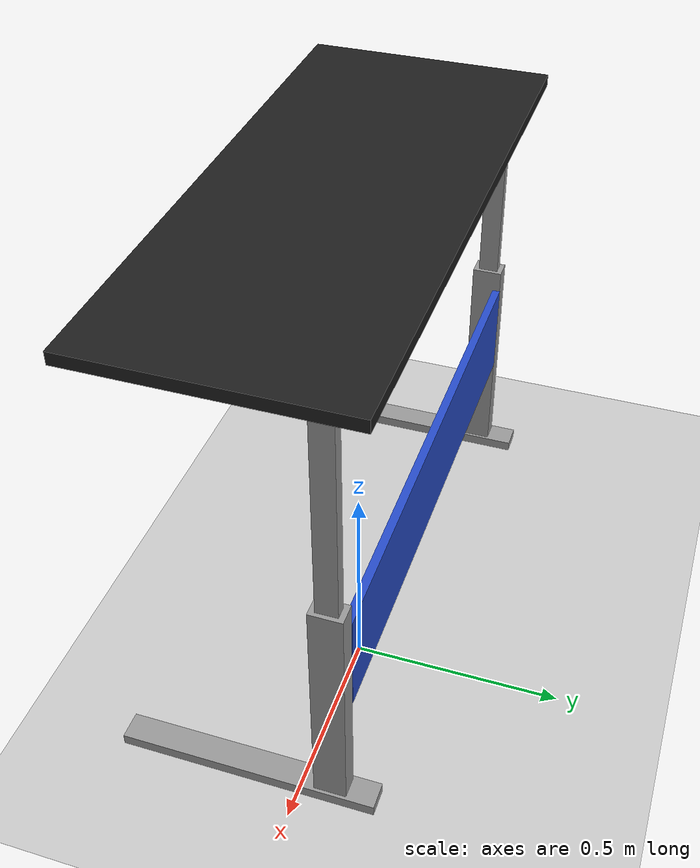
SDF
<sdf version="1.6">
 <world name="default">
  <light name="sun" type="directional">
   <pose>0 0 10 0 -0 0</pose>
   <diffuse>0.8 0.8 0.8 1</diffuse>
   <specular>0.1 0.1 0.1 1</specular>
   <attenuation>
    <range>1000</range>
    <constant>0.9</constant>
    <linear>0.01</linear>
    <quadratic>0.001</quadratic>
   </attenuation>
   <direction>-0.5 0.5 -1</direction>
  </light>
  <model name="ground_plane">
   <static>1</static>
   <link name="link">
    <collision name="collision">
     <geometry><plane><normal>0 0 1</normal><size>100 100</size></plane></geometry>
     <surface><friction><ode><mu>100</mu><mu2>50</mu2></ode></friction></surface>
    </collision>
    <visual name="visual">
     <cast_shadows>0</cast_shadows>
     <geometry><plane><normal>0 0 1</normal><size>100 100</size></plane></geometry>
     <material>
      <script><uri>file://media/materials/scripts/gazebo.material</uri><name>Gazebo/Grey</name></script>
     </material>
    </visual>
   </link>
  </model>
  <gravity>0 0 -9.8</gravity>
  <magnetic_field>6e-06 2.3e-05 -4.2e-05</magnetic_field>
  <atmosphere type="adiabatic"/>
  <physics name="default_physics" default="0" type="ode">
   <max_step_size>0.001</max_step_size>
   <real_time_factor>1</real_time_factor>
   <real_time_update_rate>1000</real_time_update_rate>
  </physics>
  <scene><ambient>0.4 0.4 0.4 1</ambient><background>0.7 0.7 0.7 1</background><shadows>1</shadows></scene>
  <spherical_coordinates>
   <surface_model>EARTH_WGS84</surface_model>
   <latitude_deg>0</latitude_deg>
   <longitude_deg>0</longitude_deg>
   <elevation>0</elevation>
   <heading_deg>0</heading_deg>
  </spherical_coordinates>
  <model name="desk">
   <include><name>desk</name><uri>model://desk</uri><pose>0 0.5 0 0 0 0</pose></include>
  </model>
 </world>
</sdf>

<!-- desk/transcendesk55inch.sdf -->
<sdf version='1.6'>
  <model name='transcendesk'>
    <!--
    To adjust the height of the table, see note below. Also recompute inertia.
    -->
    <link name='table_base'>
      <pose frame=''>-0.243716 -0.625087 0 0 -0 0</pose>
      <inertial>
        <mass>30</mass>
        <pose frame=''>0 0 0 0 -0 0</pose>
        <inertia>
          <ixx>9.825</ixx>
          <ixy>0</ixy>
          <ixz>0</ixz>
          <iyy>8.325</iyy>
          <iyz>0</iyz>
          <izz>11.3</izz>
        </inertia>
      </inertial>
      <self_collide>0</self_collide>
      <kinematic>0</kinematic>
      <gravity>1</gravity>
      <visual name='right_crossbar'>
        <pose frame=''>0.65 0 0.01 0 -0 0</pose>
        <geometry>
          <box>
            <size>0.065 0.61 0.03</size>
          </box>
        </geometry>
        <material>
          <script>
            <uri>file://media/materials/scripts/gazebo.material</uri>
            <name>Gazebo/Grey</name>
          </script>
          <ambient>0.3 0.3 0.3 1</ambient>
          <diffuse>0.7 0.7 0.7 1</diffuse>
          <specular>0.01 0.01 0.01 1</specular>
          <emissive>0 0 0 1</emissive>
          <shader type='vertex'>
            <normal_map>__default__</normal_map>
          </shader>
        </material>
        <cast_shadows>1</cast_shadows>
        <transparency>0</transparency>
      </visual>
      <visual name='left_crossbar'>
        <pose frame=''>-0.65 0 0.01 0 -0 0</pose>
        <geometry>
          <box>
            <size>0.065 0.61 0.03</size>
          </box>
        </geometry>
        <material>
          <script>
            <uri>file://media/materials/scripts/gazebo.material</uri>
            <name>Gazebo/Grey</name>
          </script>
          <ambient>0.3 0.3 0.3 1</ambient>
          <diffuse>0.7 0.7 0.7 1</diffuse>
          <specular>0.01 0.01 0.01 1</specular>
          <emissive>0 0 0 1</emissive>
          <shader type='vertex'>
            <normal_map>__default__</normal_map>
          </shader>
        </material>
        <cast_shadows>1</cast_shadows>
        <transparency>0</transparency>
      </visual>
      <visual name='bottom_right_leg'>
        <pose frame=''>0.65 0.2 0.31 0 -0 0</pose>
        <geometry>
          <box>
            <size>0.05 0.076 0.58</size>
          </box>
        </geometry>
        <material>
          <script>
            <uri>file://media/materials/scripts/gazebo.material</uri>
            <name>Gazebo/Grey</name>
          </script>
          <ambient>0.3 0.3 0.3 1</ambient>
          <diffuse>0.7 0.7 0.7 1</diffuse>
          <specular>0.01 0.01 0.01 1</specular>
          <emissive>0 0 0 1</emissive>
          <shader type='vertex'>
            <normal_map>__default__</normal_map>
          </shader>
        </material>
        <cast_shadows>1</cast_shadows>
        <transparency>0</transparency>
      </visual>
      <visual name='leg_brace'>
        <pose frame=''>0 0.229 0.42 0 -0 0</pose>
        <geometry>
          <box>
            <size>1.25 0.02 0.25</size>
          </box>
        </geometry>
        <material>
          <script>
            <uri>file://media/materials/scripts/gazebo.material</uri>
            <name>Gazebo/Blue</name>
          </script>
          <ambient>0.3 0.3 0.3 1</ambient>
          <diffuse>0.7 0.7 0.7 1</diffuse>
          <specular>0.01 0.01 0.01 1</specular>
          <emissive>0 0 0 1</emissive>
          <shader type='vertex'>
            <normal_map>__default__</normal_map>
          </shader>
        </material>
        <cast_shadows>1</cast_shadows>
        <transparency>0</transparency>
      </visual>
      <visual name='bottom_left_leg'>
        <pose frame=''>-0.65 0.2 0.31 0 -0 0</pose>
        <geometry>
          <box>
            <size>0.05 0.076 0.58</size>
          </box>
        </geometry>
        <material>
          <script>
            <uri>file://media/materials/scripts/gazebo.material</uri>
            <name>Gazebo/Grey</name>
          </script>
          <ambient>0.3 0.3 0.3 1</ambient>
          <diffuse>0.7 0.7 0.7 1</diffuse>
          <specular>0.01 0.01 0.01 1</specular>
          <emissive>0 0 0 1</emissive>
          <shader type='vertex'>
            <normal_map>__default__</normal_map>
          </shader>
        </material>
        <cast_shadows>1</cast_shadows>
        <transparency>0</transparency>
      </visual>
      <collision name='bottom_left_leg'>
        <laser_retro>0</laser_retro>
        <max_contacts>10</max_contacts>
        <pose frame=''>-0.65 0.2 0.31 0 -0 0</pose>
        <geometry>
          <box>
            <size>0.05 0.076 0.58</size>
          </box>
        </geometry>
        <surface>
          <friction>
            <ode>
              <mu>1</mu>
              <mu2>1</mu2>
              <fdir1>0 0 0</fdir1>
              <slip1>0</slip1>
              <slip2>0</slip2>
            </ode>
            <torsional>
              <coefficient>1</coefficient>
              <patch_radius>0</patch_radius>
              <surface_radius>0</surface_radius>
              <use_patch_radius>1</use_patch_radius>
              <ode>
                <slip>0</slip>
              </ode>
            </torsional>
          </friction>
          <bounce>
            <restitution_coefficient>0</restitution_coefficient>
            <threshold>1e+06</threshold>
          </bounce>
          <contact>
            <collide_without_contact>0</collide_without_contact>
            <collide_without_contact_bitmask>1</collide_without_contact_bitmask>
            <collide_bitmask>1</collide_bitmask>
            <ode>
              <soft_cfm>0</soft_cfm>
              <soft_erp>0.2</soft_erp>
              <kp>1e+13</kp>
              <kd>1</kd>
              <max_vel>0.01</max_vel>
              <min_depth>0</min_depth>
            </ode>
            <bullet>
              <split_impulse>1</split_impulse>
              <split_impulse_penetration_threshold>-0.01</split_impulse_penetration_threshold>
              <soft_cfm>0</soft_cfm>
              <soft_erp>0.2</soft_erp>
              <kp>1e+13</kp>
              <kd>1</kd>
            </bullet>
          </contact>
        </surface>
      </collision>
      <collision name='left_crossbar'>
        <laser_retro>0</laser_retro>
        <max_contacts>10</max_contacts>
        <pose frame=''>-0.65 0 0.01 0 -0 0</pose>
        <geometry>
          <box>
            <size>0.065 0.61 0.03</size>
          </box>
        </geometry>
        <surface>
          <friction>
            <ode>
              <mu>1</mu>
              <mu2>1</mu2>
              <fdir1>0 0 0</fdir1>
              <slip1>0</slip1>
              <slip2>0</slip2>
            </ode>
            <torsional>
              <coefficient>1</coefficient>
              <patch_radius>0</patch_radius>
              <surface_radius>0</surface_radius>
              <use_patch_radius>1</use_patch_radius>
              <ode>
                <slip>0</slip>
              </ode>
            </torsional>
          </friction>
          <bounce>
            <restitution_coefficient>0</restitution_coefficient>
            <threshold>1e+06</threshold>
          </bounce>
          <contact>
            <collide_without_contact>0</collide_without_contact>
            <collide_without_contact_bitmask>1</collide_without_contact_bitmask>
            <collide_bitmask>1</collide_bitmask>
            <ode>
              <soft_cfm>0</soft_cfm>
              <soft_erp>0.2</soft_erp>
              <kp>1e+13</kp>
              <kd>1</kd>
              <max_vel>0.01</max_vel>
              <min_depth>0</min_depth>
            </ode>
            <bullet>
              <split_impulse>1</split_impulse>
              <split_impulse_penetration_threshold>-0.01</split_impulse_penetration_threshold>
              <soft_cfm>0</soft_cfm>
              <soft_erp>0.2</soft_erp>
              <kp>1e+13</kp>
              <kd>1</kd>
            </bullet>
          </contact>
        </surface>
      </collision>
      <collision name='right_crossbar'>
        <laser_retro>0</laser_retro>
        <max_contacts>10</max_contacts>
        <pose frame=''>0.65 0 0.01 0 -0 0</pose>
        <geometry>
          <box>
            <size>0.065 0.61 0.03</size>
          </box>
        </geometry>
        <surface>
          <friction>
            <ode>
              <mu>1</mu>
              <mu2>1</mu2>
              <fdir1>0 0 0</fdir1>
              <slip1>0</slip1>
              <slip2>0</slip2>
            </ode>
            <torsional>
              <coefficient>1</coefficient>
              <patch_radius>0</patch_radius>
              <surface_radius>0</surface_radius>
              <use_patch_radius>1</use_patch_radius>
              <ode>
                <slip>0</slip>
              </ode>
            </torsional>
          </friction>
          <bounce>
            <restitution_coefficient>0</restitution_coefficient>
            <threshold>1e+06</threshold>
          </bounce>
          <contact>
            <collide_without_contact>0</collide_without_contact>
            <collide_without_contact_bitmask>1</collide_without_contact_bitmask>
            <collide_bitmask>1</collide_bitmask>
            <ode>
              <soft_cfm>0</soft_cfm>
              <soft_erp>0.2</soft_erp>
              <kp>1e+13</kp>
              <kd>1</kd>
              <max_vel>0.01</max_vel>
              <min_depth>0</min_depth>
            </ode>
            <bullet>
              <split_impulse>1</split_impulse>
              <split_impulse_penetration_threshold>-0.01</split_impulse_penetration_threshold>
              <soft_cfm>0</soft_cfm>
              <soft_erp>0.2</soft_erp>
              <kp>1e+13</kp>
              <kd>1</kd>
            </bullet>
          </contact>
        </surface>
      </collision>
      <collision name='bottom_right_leg'>
        <laser_retro>0</laser_retro>
        <max_contacts>10</max_contacts>
        <pose frame=''>0.65 0.2 0.31 0 -0 0</pose>
        <geometry>
          <box>
            <size>0.05 0.076 0.58</size>
          </box>
        </geometry>
        <surface>
          <friction>
            <ode>
              <mu>1</mu>
              <mu2>1</mu2>
              <fdir1>0 0 0</fdir1>
              <slip1>0</slip1>
              <slip2>0</slip2>
            </ode>
            <torsional>
              <coefficient>1</coefficient>
              <patch_radius>0</patch_radius>
              <surface_radius>0</surface_radius>
              <use_patch_radius>1</use_patch_radius>
              <ode>
                <slip>0</slip>
              </ode>
            </torsional>
          </friction>
          <bounce>
            <restitution_coefficient>0</restitution_coefficient>
            <threshold>1e+06</threshold>
          </bounce>
          <contact>
            <collide_without_contact>0</collide_without_contact>
            <collide_without_contact_bitmask>1</collide_without_contact_bitmask>
            <collide_bitmask>1</collide_bitmask>
            <ode>
              <soft_cfm>0</soft_cfm>
              <soft_erp>0.2</soft_erp>
              <kp>1e+13</kp>
              <kd>1</kd>
              <max_vel>0.01</max_vel>
              <min_depth>0</min_depth>
            </ode>
            <bullet>
              <split_impulse>1</split_impulse>
              <split_impulse_penetration_threshold>-0.01</split_impulse_penetration_threshold>
              <soft_cfm>0</soft_cfm>
              <soft_erp>0.2</soft_erp>
              <kp>1e+13</kp>
              <kd>1</kd>
            </bullet>
          </contact>
        </surface>
      </collision>
      <collision name='leg_brace'>
        <laser_retro>0</laser_retro>
        <max_contacts>10</max_contacts>
        <pose frame=''>0 0.229 0.42 0 -0 0</pose>
        <geometry>
          <box>
            <size>1.25 0.02 0.25</size>
          </box>
        </geometry>
        <surface>
          <friction>
            <ode>
              <mu>1</mu>
              <mu2>1</mu2>
              <fdir1>0 0 0</fdir1>
              <slip1>0</slip1>
              <slip2>0</slip2>
            </ode>
            <torsional>
              <coefficient>1</coefficient>
              <patch_radius>0</patch_radius>
              <surface_radius>0</surface_radius>
              <use_patch_radius>1</use_patch_radius>
              <ode>
                <slip>0</slip>
              </ode>
            </torsional>
          </friction>
          <bounce>
            <restitution_coefficient>0</restitution_coefficient>
            <threshold>1e+06</threshold>
          </bounce>
          <contact>
            <collide_without_contact>0</collide_without_contact>
            <collide_without_contact_bitmask>1</collide_without_contact_bitmask>
            <collide_bitmask>1</collide_bitmask>
            <ode>
              <soft_cfm>0</soft_cfm>
              <soft_erp>0.2</soft_erp>
              <kp>1e+13</kp>
              <kd>1</kd>
              <max_vel>0.01</max_vel>
              <min_depth>0</min_depth>
            </ode>
            <bullet>
              <split_impulse>1</split_impulse>
              <split_impulse_penetration_threshold>-0.01</split_impulse_penetration_threshold>
              <soft_cfm>0</soft_cfm>
              <soft_erp>0.2</soft_erp>
              <kp>1e+13</kp>
              <kd>1</kd>
            </bullet>
          </contact>
        </surface>
      </collision>
    </link>
    <link name='table_upper'>
      <!--
      To adjust the height of the table, adjust the value of the third
      parameter in the pose frame, z. Also adjust inertia.
      -->
      <pose frame=''>-0.243716 -0.625087 0.48 0 -0 0</pose>
      <inertial>
        <mass>53.5</mass>
        <pose frame=''>0 0 0 0 -0 0</pose>
        <inertia>
          <ixx>5.17741</ixx>
          <ixy>0</ixy>
          <ixz>0</ixz>
          <iyy>4.84375</iyy>
          <iyz>0</iyz>
          <izz>4.84375</izz>
        </inertia>
      </inertial>
      <self_collide>0</self_collide>
      <kinematic>0</kinematic>
      <visual name='upper_right_leg'>
        <pose frame=''>0.65 0.2 0.375 0 -0 0</pose>
        <geometry>
          <box>
            <size>0.03 0.05 0.53</size>
          </box>
        </geometry>
        <material>
          <script>
            <uri>file://media/materials/scripts/gazebo.material</uri>
            <name>Gazebo/Grey</name>
          </script>
          <ambient>0.3 0.3 0.3 1</ambient>
          <diffuse>0.7 0.7 0.7 1</diffuse>
          <specular>0.01 0.01 0.01 1</specular>
          <emissive>0 0 0 1</emissive>
          <shader type='vertex'>
            <normal_map>__default__</normal_map>
          </shader>
        </material>
        <cast_shadows>1</cast_shadows>
        <transparency>0</transparency>
      </visual>
      <visual name='upper_left_leg'>
        <pose frame=''>-0.65 0.2 0.375 0 -0 0</pose>
        <geometry>
          <box>
            <size>0.03 0.05 0.53</size>
          </box>
        </geometry>
        <material>
          <script>
            <uri>file://media/materials/scripts/gazebo.material</uri>
            <name>Gazebo/Grey</name>
          </script>
          <ambient>0.3 0.3 0.3 1</ambient>
          <diffuse>0.7 0.7 0.7 1</diffuse>
          <specular>0.01 0.01 0.01 1</specular>
          <emissive>0 0 0 1</emissive>
          <shader type='vertex'>
            <normal_map>__default__</normal_map>
          </shader>
        </material>
        <cast_shadows>1</cast_shadows>
        <transparency>0</transparency>
      </visual>
      <visual name='tabletop'>
        <pose frame=''>0 0 0.65 0 -0 0</pose>
        <geometry>
          <box>
            <size>1.4 0.6 0.03</size>
          </box>
        </geometry>
        <material>
          <script>
            <uri>file://media/materials/scripts/gazebo.material</uri>
            <name>Gazebo/Black</name>
          </script>
          <ambient>0.2 0.2 0.2 1</ambient>
          <diffuse>0.3 0.3 0.3 1</diffuse>
          <specular>0.01 0.01 0.01 1</specular>
          <emissive>0 0 0 1</emissive>
          <shader type='vertex'>
            <normal_map>__default__</normal_map>
          </shader>
        </material>
        <cast_shadows>1</cast_shadows>
        <transparency>0</transparency>
      </visual>
      <collision name='tabletop'>
        <laser_retro>0</laser_retro>
        <max_contacts>10</max_contacts>
        <pose frame=''>0 0 0.65 0 -0 0</pose>
        <geometry>
          <box>
            <size>1.4 0.6 0.03</size>
          </box>
        </geometry>
        <surface>
          <friction>
            <ode>
              <mu>1</mu>
              <mu2>1</mu2>
              <fdir1>0 0 0</fdir1>
              <slip1>0</slip1>
              <slip2>0</slip2>
            </ode>
            <torsional>
              <coefficient>1</coefficient>
              <patch_radius>0</patch_radius>
              <surface_radius>0</surface_radius>
              <use_patch_radius>1</use_patch_radius>
              <ode>
                <slip>0</slip>
              </ode>
            </torsional>
          </friction>
          <bounce>
            <restitution_coefficient>0</restitution_coefficient>
            <threshold>1e+06</threshold>
          </bounce>
          <contact>
            <collide_without_contact>0</collide_without_contact>
            <collide_without_contact_bitmask>1</collide_without_contact_bitmask>
            <collide_bitmask>1</collide_bitmask>
            <ode>
              <soft_cfm>0</soft_cfm>
              <soft_erp>0.2</soft_erp>
              <kp>1e+13</kp>
              <kd>1</kd>
              <max_vel>0.01</max_vel>
              <min_depth>0</min_depth>
            </ode>
            <bullet>
              <split_impulse>1</split_impulse>
              <split_impulse_penetration_threshold>-0.01</split_impulse_penetration_threshold>
              <soft_cfm>0</soft_cfm>
              <soft_erp>0.2</soft_erp>
              <kp>1e+13</kp>
              <kd>1</kd>
            </bullet>
          </contact>
        </surface>
      </collision>
    </link>
    <!--
    TODO(Lucy.tri): This joint could be used to simulate the way the table's
    height can be adjusted. The limits need to be tuned and other params set.
    -->
    <joint name='table_height' type='prismatic'>
      <parent>table_upper</parent>
      <child>table_base</child>
      <pose frame=''>0 0 0 0 -0 0</pose>
      <axis>
        <xyz>0 0 1</xyz>
        <use_parent_model_frame>0</use_parent_model_frame>
        <limit>
          <lower>-0.3</lower>
          <upper>0</upper>
          <effort>-1</effort>
          <velocity>-1</velocity>
        </limit>
        <dynamics>
          <spring_reference>0</spring_reference>
          <spring_stiffness>0</spring_stiffness>
          <damping>0</damping>
          <friction>0</friction>
        </dynamics>
      </axis>
      <physics>
        <ode>
          <limit>
            <cfm>0</cfm>
            <erp>0.2</erp>
          </limit>
          <suspension>
            <cfm>0</cfm>
            <erp>0.2</erp>
          </suspension>
        </ode>
      </physics>
    </joint>
    <static>1</static>
    <allow_auto_disable>1</allow_auto_disable>
  </model>
</sdf>
